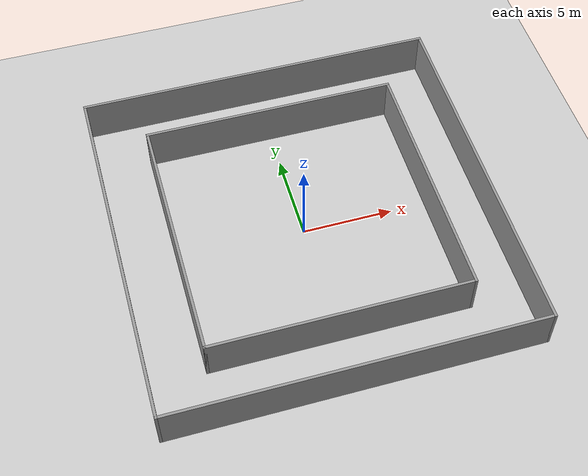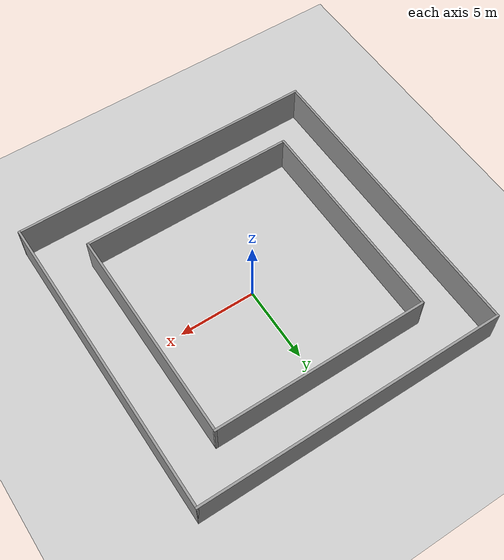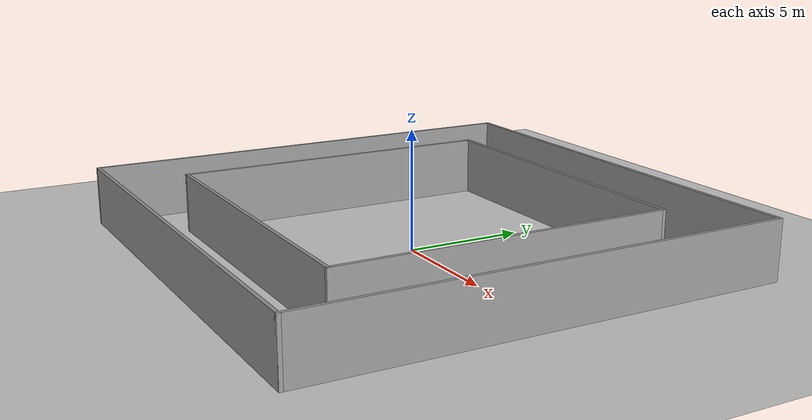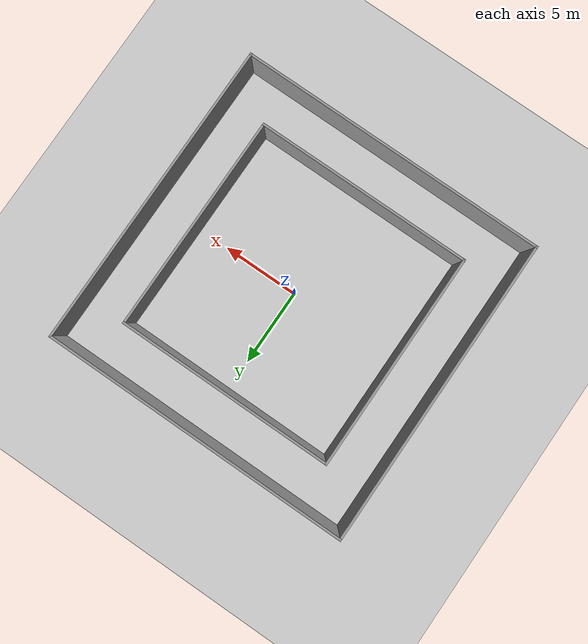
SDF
<sdf version="1.6">
 <world name="default">
  <light name="sun" type="directional">
   <pose>0 0 10 0 -0 0</pose>
   <diffuse>0.8 0.8 0.8 1</diffuse>
   <specular>0.2 0.2 0.2 1</specular>
   <attenuation>
    <range>1000</range>
    <constant>0.9</constant>
    <linear>0.01</linear>
    <quadratic>0.001</quadratic>
   </attenuation>
   <direction>-0.5 0.1 -0.9</direction>
  </light>
  <model name="ground_plane">
   <static>1</static>
   <link name="link">
    <collision name="collision">
     <geometry><plane><normal>0 0 1</normal><size>100 100</size></plane></geometry>
     <surface>
      <contact><collide_bitmask>65535</collide_bitmask></contact>
      <friction><ode><mu>100</mu><mu2>50</mu2></ode></friction>
     </surface>
    </collision>
    <visual name="visual">
     <cast_shadows>0</cast_shadows>
     <geometry><plane><normal>0 0 1</normal><size>100 100</size></plane></geometry>
     <material>
      <script><uri>file://media/materials/scripts/gazebo.material</uri><name>Gazebo/Grey</name></script>
     </material>
    </visual>
   </link>
  </model>
  <gravity>0 0 -9.8</gravity>
  <magnetic_field>6e-06 2.3e-05 -4.2e-05</magnetic_field>
  <atmosphere type="adiabatic"/>
  <physics name="default_physics" default="0" type="ode">
   <max_step_size>0.001</max_step_size>
   <real_time_factor>1</real_time_factor>
   <real_time_update_rate>1000</real_time_update_rate>
  </physics>
  <scene><ambient>0.4 0.4 0.4 1</ambient><background>0.7 0.7 0.7 1</background><shadows>1</shadows></scene>
  <audio><device>default</device></audio>
  <spherical_coordinates>
   <surface_model>EARTH_WGS84</surface_model>
   <latitude_deg>0</latitude_deg>
   <longitude_deg>0</longitude_deg>
   <elevation>0</elevation>
   <heading_deg>0</heading_deg>
  </spherical_coordinates>
  <model name="square_loop">
   <link name="Wall_0">
    <collision name="Wall_0_Collision">
     <geometry><box><size>20.15 0.15 2.5</size></box></geometry>
     <pose>0 0 1.25 0 -0 0</pose>
    </collision>
    <visual name="Wall_0_Visual">
     <pose>0 0 1.25 0 -0 0</pose>
     <geometry><box><size>20.15 0.15 2.5</size></box></geometry>
     <material>
      <script><uri>file://media/materials/scripts/gazebo.material</uri><name>Gazebo/Grey</name></script>
      <ambient>1 1 1 1</ambient>
     </material>
     <meta><layer>0</layer></meta>
    </visual>
    <pose>0 -10 0 0 -0 0</pose>
   </link>
   <link name="Wall_10">
    <collision name="Wall_10_Collision">
     <geometry><box><size>14.15 0.15 2.5</size></box></geometry>
     <pose>0 0 1.25 0 -0 0</pose>
    </collision>
    <visual name="Wall_10_Visual">
     <pose>0 0 1.25 0 -0 0</pose>
     <geometry><box><size>14.15 0.15 2.5</size></box></geometry>
     <material>
      <script><uri>file://media/materials/scripts/gazebo.material</uri><name>Gazebo/Grey</name></script>
      <ambient>1 1 1 1</ambient>
     </material>
     <meta><layer>0</layer></meta>
    </visual>
    <pose>0 -7 0 0 -0 0</pose>
   </link>
   <link name="Wall_11">
    <collision name="Wall_11_Collision">
     <geometry><box><size>14.1504 0.15 2.5</size></box></geometry>
     <pose>0 0 1.25 0 -0 0</pose>
    </collision>
    <visual name="Wall_11_Visual">
     <pose>0 0 1.25 0 -0 0</pose>
     <geometry><box><size>14.1504 0.15 2.5</size></box></geometry>
     <material>
      <script><uri>file://media/materials/scripts/gazebo.material</uri><name>Gazebo/Grey</name></script>
      <ambient>1 1 1 1</ambient>
     </material>
     <meta><layer>0</layer></meta>
    </visual>
    <pose>7 0 0 0 -0 1.5708</pose>
   </link>
   <link name="Wall_2">
    <collision name="Wall_2_Collision">
     <geometry><box><size>20.15 0.15 2.5</size></box></geometry>
     <pose>0 0 1.25 0 -0 0</pose>
    </collision>
    <visual name="Wall_2_Visual">
     <pose>0 0 1.25 0 -0 0</pose>
     <geometry><box><size>20.15 0.15 2.5</size></box></geometry>
     <material>
      <script><uri>file://media/materials/scripts/gazebo.material</uri><name>Gazebo/Grey</name></script>
      <ambient>1 1 1 1</ambient>
     </material>
     <meta><layer>0</layer></meta>
    </visual>
    <pose>-10 0 0 0 -0 1.5708</pose>
   </link>
   <link name="Wall_3">
    <collision name="Wall_3_Collision">
     <geometry><box><size>20.15 0.15 2.5</size></box></geometry>
     <pose>0 0 1.25 0 -0 0</pose>
    </collision>
    <visual name="Wall_3_Visual">
     <pose>0 0 1.25 0 -0 0</pose>
     <geometry><box><size>20.15 0.15 2.5</size></box></geometry>
     <material>
      <script><uri>file://media/materials/scripts/gazebo.material</uri><name>Gazebo/Grey</name></script>
      <ambient>1 1 1 1</ambient>
     </material>
     <meta><layer>0</layer></meta>
    </visual>
    <pose>0 10 0 0 -0 0</pose>
   </link>
   <link name="Wall_4">
    <collision name="Wall_4_Collision">
     <geometry><box><size>20.15 0.15 2.5</size></box></geometry>
     <pose>0 0 1.25 0 -0 0</pose>
    </collision>
    <visual name="Wall_4_Visual">
     <pose>0 0 1.25 0 -0 0</pose>
     <geometry><box><size>20.15 0.15 2.5</size></box></geometry>
     <material>
      <script><uri>file://media/materials/scripts/gazebo.material</uri><name>Gazebo/Grey</name></script>
      <ambient>1 1 1 1</ambient>
     </material>
     <meta><layer>0</layer></meta>
    </visual>
    <pose>10 0 0 0 -0 -1.5708</pose>
   </link>
   <link name="Wall_6">
    <collision name="Wall_6_Collision">
     <geometry><box><size>14.15 0.15 2.5</size></box></geometry>
     <pose>0 0 1.25 0 -0 0</pose>
    </collision>
    <visual name="Wall_6_Visual">
     <pose>0 0 1.25 0 -0 0</pose>
     <geometry><box><size>14.15 0.15 2.5</size></box></geometry>
     <material>
      <script><uri>file://media/materials/scripts/gazebo.material</uri><name>Gazebo/Grey</name></script>
      <ambient>1 1 1 1</ambient>
     </material>
     <meta><layer>0</layer></meta>
    </visual>
    <pose>0 7 0 0 -0 0</pose>
   </link>
   <link name="Wall_8">
    <collision name="Wall_8_Collision">
     <geometry><box><size>14.15 0.15 2.5</size></box></geometry>
     <pose>0 0 1.25 0 -0 0</pose>
    </collision>
    <visual name="Wall_8_Visual">
     <pose>0 0 1.25 0 -0 0</pose>
     <geometry><box><size>14.15 0.15 2.5</size></box></geometry>
     <material>
      <script><uri>file://media/materials/scripts/gazebo.material</uri><name>Gazebo/Grey</name></script>
      <ambient>1 1 1 1</ambient>
     </material>
     <meta><layer>0</layer></meta>
    </visual>
    <pose>-7 0 0 0 -0 -1.5708</pose>
   </link>
   <static>1</static>
  </model>
  <plugin name="gazebo_occupancy_map" filename="libgazebo_2Dmap_plugin.so">
   <map_resolution>0.1</map_resolution>
   <map_height>0.3</map_height>
   <map_size_x>25</map_size_x>
   <map_size_y>25</map_size_y>
   <init_robot_x>7</init_robot_x>
   <init_robot_y>7</init_robot_y>
  </plugin>
 </world>
</sdf>
